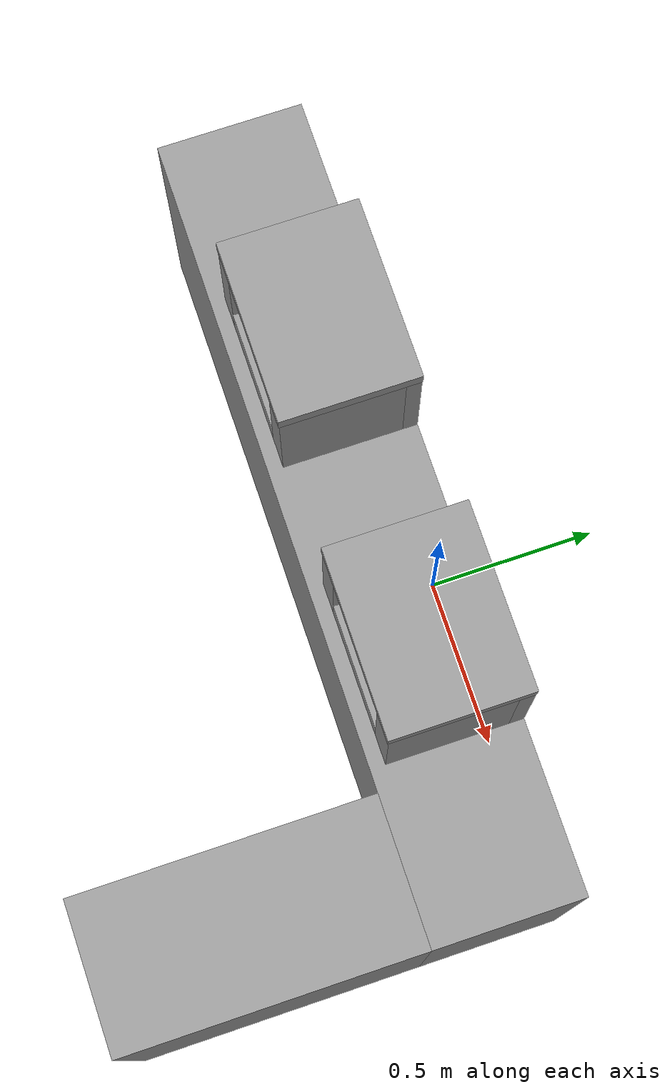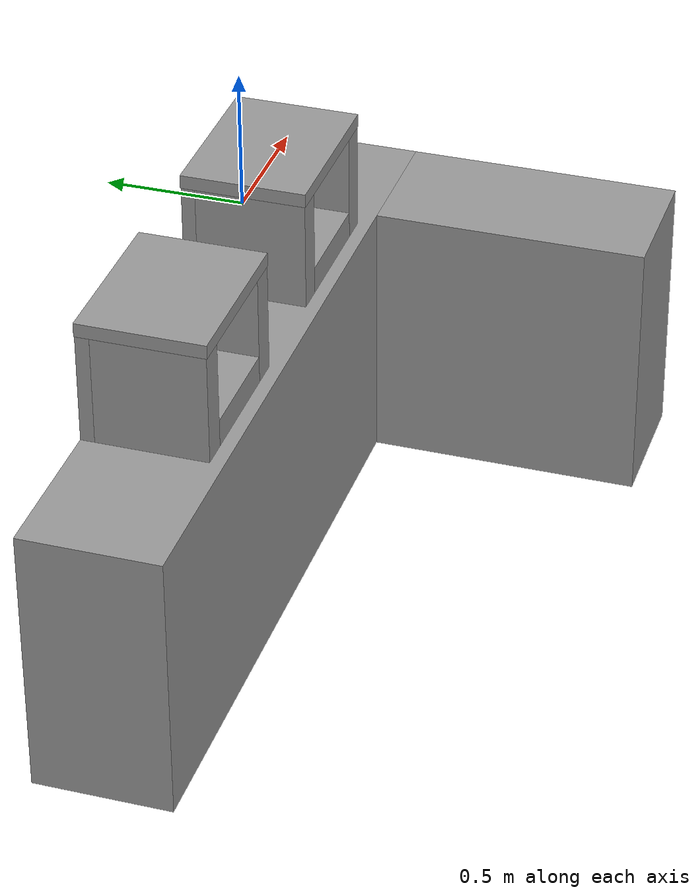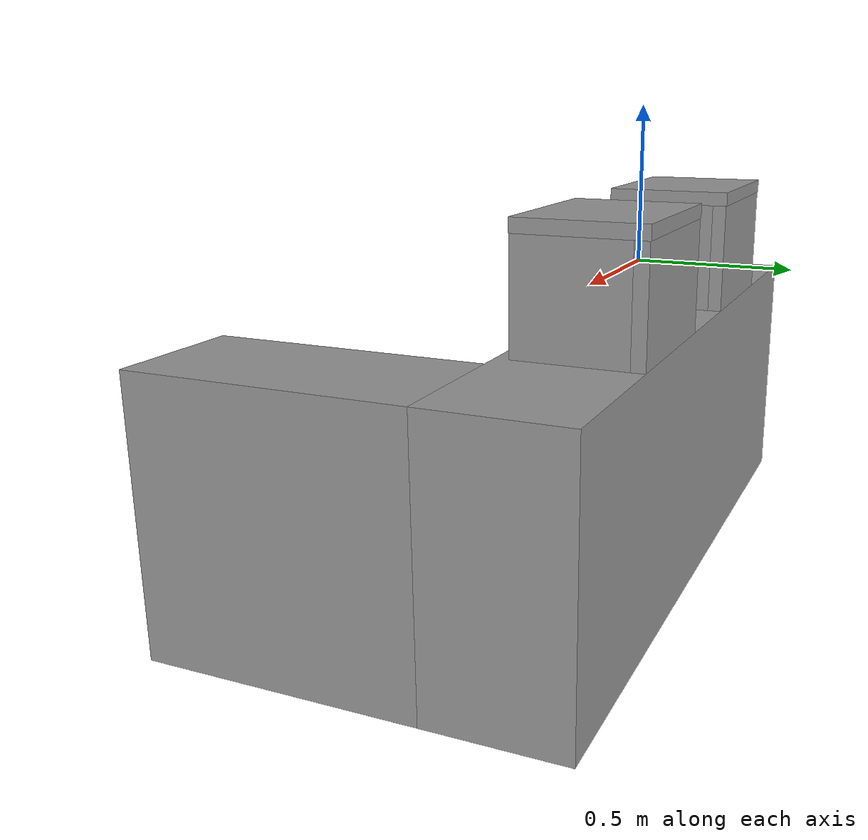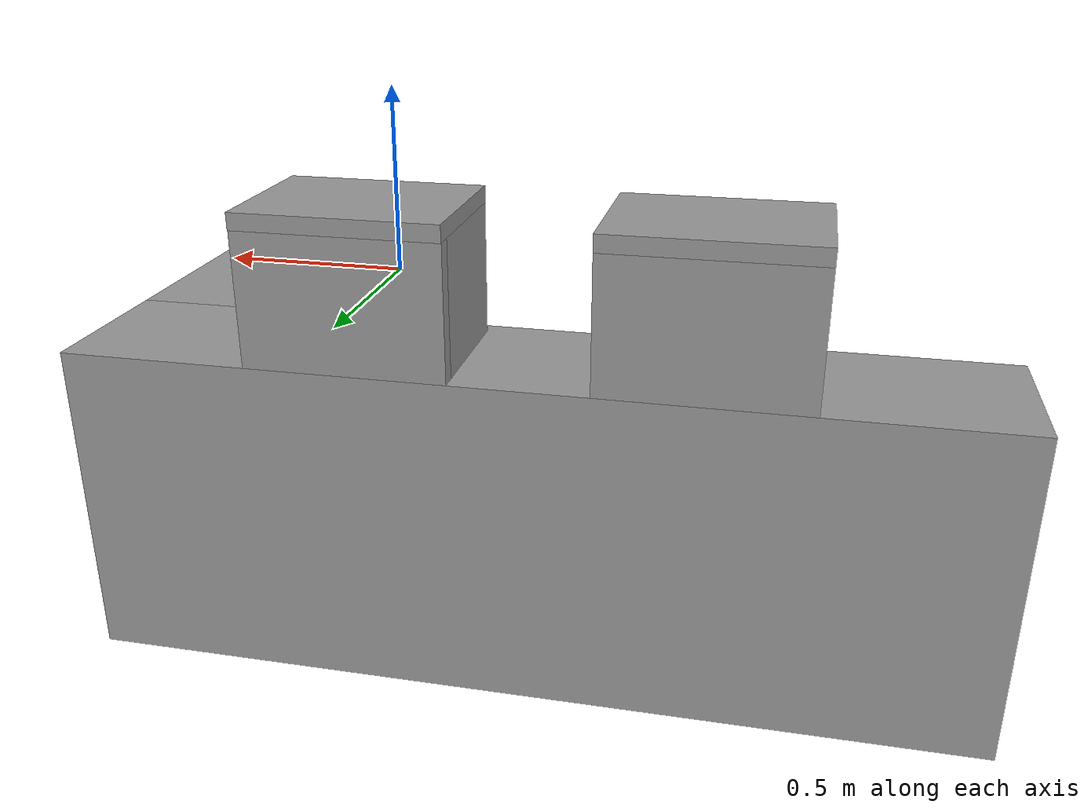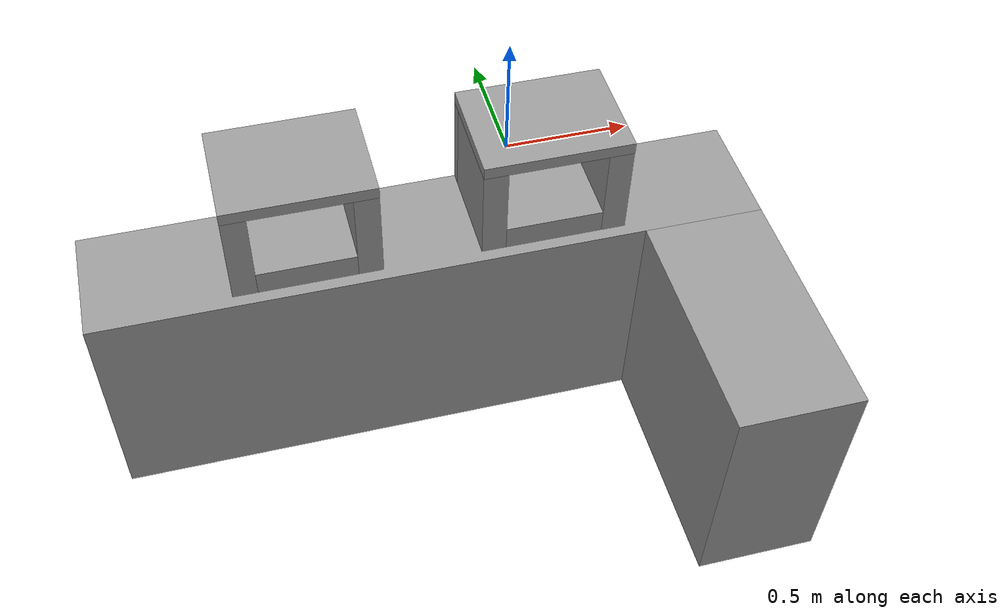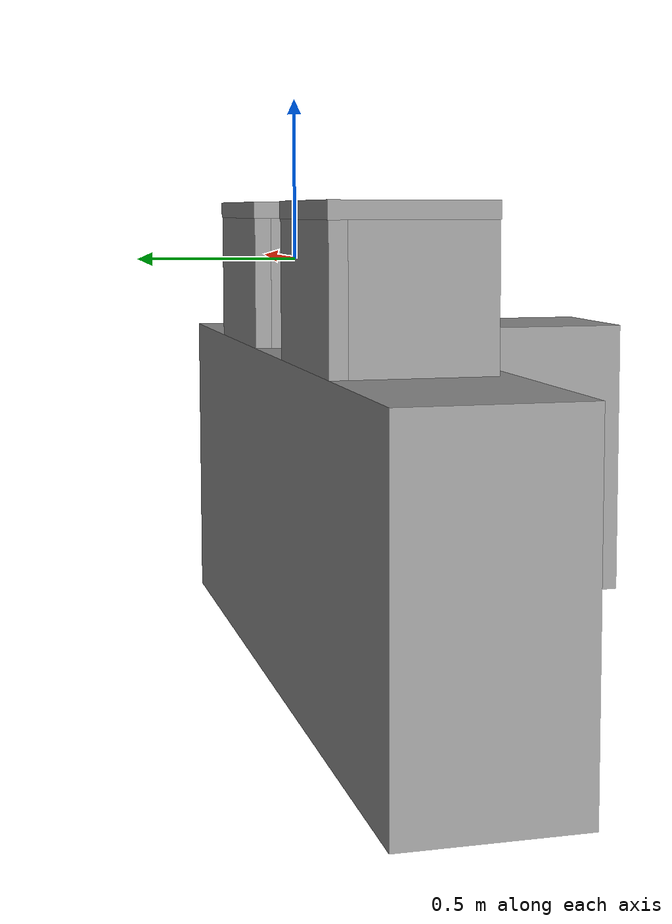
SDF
<?xml version='1.0'?>
<sdf version='1.7'>
  <model name='station'>
    <link name='link_0'>
      <inertial>
        <mass>1</mass>
        <inertia>
          <ixx>0.166667</ixx>
          <ixy>0</ixy>
          <ixz>0</ixz>
          <iyy>0.166667</iyy>
          <iyz>0</iyz>
          <izz>0.166667</izz>
        </inertia>
        <pose>0 0 0 0 -0 0</pose>
      </inertial>
      <pose>-0.371179 -0.089149 -0.771793 0 -0 0</pose>
      <gravity>1</gravity>
      <self_collide>0</self_collide>
      <kinematic>0</kinematic>
      <enable_wind>0</enable_wind>
      <visual name='visual'>
        <pose>0 0 0 0 -0 0</pose>
        <geometry>
          <box>
            <size>2.75 0.5 1</size>
          </box>
        </geometry>
        <material>
          <lighting>1</lighting>
          <script>
            <uri>file://media/materials/scripts/gazebo.material</uri>
            <name>Gazebo/Grey</name>
          </script>
          <shader type='pixel'>
            <normal_map>__default__</normal_map>
          </shader>
          <ambient>1 1 1 1</ambient>
          <diffuse>1 1 1 1</diffuse>
          <specular>0 0 0 0</specular>
          <emissive>0 0 0 1</emissive>
        </material>
        <transparency>0</transparency>
        <cast_shadows>1</cast_shadows>
      </visual>
      <collision name='collision_2'>
        <laser_retro>0</laser_retro>
        <max_contacts>10</max_contacts>
        <pose>0 0 0 0 -0 0</pose>
        <geometry>
          <box>
            <size>2.75 0.5 1</size>
          </box>
        </geometry>
        <surface>
          <friction>
            <ode>
              <mu>1</mu>
              <mu2>1</mu2>
              <fdir1>0 0 0</fdir1>
              <slip1>0</slip1>
              <slip2>0</slip2>
            </ode>
            <torsional>
              <coefficient>1</coefficient>
              <patch_radius>0</patch_radius>
              <surface_radius>0</surface_radius>
              <use_patch_radius>1</use_patch_radius>
              <ode>
                <slip>0</slip>
              </ode>
            </torsional>
          </friction>
          <bounce>
            <restitution_coefficient>0</restitution_coefficient>
            <threshold>1e+06</threshold>
          </bounce>
          <contact>
            <collide_without_contact>0</collide_without_contact>
            <collide_without_contact_bitmask>1</collide_without_contact_bitmask>
            <collide_bitmask>1</collide_bitmask>
            <ode>
              <soft_cfm>0</soft_cfm>
              <soft_erp>0.2</soft_erp>
              <kp>1e+13</kp>
              <kd>1</kd>
              <max_vel>0.01</max_vel>
              <min_depth>0</min_depth>
            </ode>
            <bullet>
              <split_impulse>1</split_impulse>
              <split_impulse_penetration_threshold>-0.01</split_impulse_penetration_threshold>
              <soft_cfm>0</soft_cfm>
              <soft_erp>0.2</soft_erp>
              <kp>1e+13</kp>
              <kd>1</kd>
            </bullet>
          </contact>
        </surface>
      </collision>
    </link>
    <link name='link_1'>
      <inertial>
        <mass>1</mass>
        <inertia>
          <ixx>0.166667</ixx>
          <ixy>0</ixy>
          <ixz>0</ixz>
          <iyy>0.166667</iyy>
          <iyz>0</iyz>
          <izz>0.166667</izz>
        </inertia>
        <pose>0 0 0 0 -0 0</pose>
      </inertial>
      <pose>0.753821 -0.839149 -0.771793 0 -0 0</pose>
      <gravity>1</gravity>
      <self_collide>0</self_collide>
      <kinematic>0</kinematic>
      <enable_wind>0</enable_wind>
      <visual name='visual'>
        <pose>0 0 0 0 -0 0</pose>
        <geometry>
          <box>
            <size>0.5 1 1</size>
          </box>
        </geometry>
        <material>
          <lighting>1</lighting>
          <script>
            <uri>file://media/materials/scripts/gazebo.material</uri>
            <name>Gazebo/Grey</name>
          </script>
          <shader type='pixel'>
            <normal_map>__default__</normal_map>
          </shader>
          <ambient>1 1 1 1</ambient>
          <diffuse>1 1 1 1</diffuse>
          <specular>0 0 0 0</specular>
          <emissive>0 0 0 1</emissive>
        </material>
        <transparency>0</transparency>
        <cast_shadows>1</cast_shadows>
      </visual>
      <collision name='collision_1'>
        <laser_retro>0</laser_retro>
        <max_contacts>10</max_contacts>
        <pose>0 0 0 0 -0 0</pose>
        <geometry>
          <box>
            <size>0.5 1 1</size>
          </box>
        </geometry>
        <surface>
          <friction>
            <ode>
              <mu>1</mu>
              <mu2>1</mu2>
              <fdir1>0 0 0</fdir1>
              <slip1>0</slip1>
              <slip2>0</slip2>
            </ode>
            <torsional>
              <coefficient>1</coefficient>
              <patch_radius>0</patch_radius>
              <surface_radius>0</surface_radius>
              <use_patch_radius>1</use_patch_radius>
              <ode>
                <slip>0</slip>
              </ode>
            </torsional>
          </friction>
          <bounce>
            <restitution_coefficient>0</restitution_coefficient>
            <threshold>1e+06</threshold>
          </bounce>
          <contact>
            <collide_without_contact>0</collide_without_contact>
            <collide_without_contact_bitmask>1</collide_without_contact_bitmask>
            <collide_bitmask>1</collide_bitmask>
            <ode>
              <soft_cfm>0</soft_cfm>
              <soft_erp>0.2</soft_erp>
              <kp>1e+13</kp>
              <kd>1</kd>
              <max_vel>0.01</max_vel>
              <min_depth>0</min_depth>
            </ode>
            <bullet>
              <split_impulse>1</split_impulse>
              <split_impulse_penetration_threshold>-0.01</split_impulse_penetration_threshold>
              <soft_cfm>0</soft_cfm>
              <soft_erp>0.2</soft_erp>
              <kp>1e+13</kp>
              <kd>1</kd>
            </bullet>
          </contact>
        </surface>
      </collision>
    </link>
    <link name='link_2'>
      <inertial>
        <mass>1</mass>
        <inertia>
          <ixx>0.166667</ixx>
          <ixy>0</ixy>
          <ixz>0</ixz>
          <iyy>0.166667</iyy>
          <iyz>0</iyz>
          <izz>0.166667</izz>
        </inertia>
        <pose>0 0 0 0 -0 0</pose>
      </inertial>
      <pose>-1.12118 -0.089149 -0.071793 0 -0 0</pose>
      <gravity>1</gravity>
      <self_collide>0</self_collide>
      <kinematic>0</kinematic>
      <enable_wind>0</enable_wind>
      <visual name='visual'>
        <pose>0 0 0 0 -0 0</pose>
        <geometry>
          <box>
            <size>0.1 0.4 0.4</size>
          </box>
        </geometry>
        <material>
          <lighting>1</lighting>
          <script>
            <uri>file://media/materials/scripts/gazebo.material</uri>
            <name>Gazebo/Grey</name>
          </script>
          <shader type='pixel'>
            <normal_map>__default__</normal_map>
          </shader>
          <ambient>0.3 0.3 0.3 1</ambient>
          <diffuse>0.7 0.7 0.7 1</diffuse>
          <specular>0.01 0.01 0.01 1</specular>
          <emissive>0 0 0 1</emissive>
        </material>
        <transparency>0</transparency>
        <cast_shadows>1</cast_shadows>
      </visual>
      <collision name='collision_1'>
        <laser_retro>0</laser_retro>
        <max_contacts>10</max_contacts>
        <pose>0 0 0 0 -0 0</pose>
        <geometry>
          <box>
            <size>0.1 0.4 0.4</size>
          </box>
        </geometry>
        <surface>
          <friction>
            <ode>
              <mu>1</mu>
              <mu2>1</mu2>
              <fdir1>0 0 0</fdir1>
              <slip1>0</slip1>
              <slip2>0</slip2>
            </ode>
            <torsional>
              <coefficient>1</coefficient>
              <patch_radius>0</patch_radius>
              <surface_radius>0</surface_radius>
              <use_patch_radius>1</use_patch_radius>
              <ode>
                <slip>0</slip>
              </ode>
            </torsional>
          </friction>
          <bounce>
            <restitution_coefficient>0</restitution_coefficient>
            <threshold>1e+06</threshold>
          </bounce>
          <contact>
            <collide_without_contact>0</collide_without_contact>
            <collide_without_contact_bitmask>1</collide_without_contact_bitmask>
            <collide_bitmask>1</collide_bitmask>
            <ode>
              <soft_cfm>0</soft_cfm>
              <soft_erp>0.2</soft_erp>
              <kp>1e+13</kp>
              <kd>1</kd>
              <max_vel>0.01</max_vel>
              <min_depth>0</min_depth>
            </ode>
            <bullet>
              <split_impulse>1</split_impulse>
              <split_impulse_penetration_threshold>-0.01</split_impulse_penetration_threshold>
              <soft_cfm>0</soft_cfm>
              <soft_erp>0.2</soft_erp>
              <kp>1e+13</kp>
              <kd>1</kd>
            </bullet>
          </contact>
        </surface>
      </collision>
    </link>
    <link name='link_2_clone'>
      <inertial>
        <mass>1</mass>
        <inertia>
          <ixx>0.166667</ixx>
          <ixy>0</ixy>
          <ixz>0</ixz>
          <iyy>0.166667</iyy>
          <iyz>0</iyz>
          <izz>0.166667</izz>
        </inertia>
        <pose>0 0 0 0 -0 0</pose>
      </inertial>
      <pose>-0.621179 -0.089149 -0.071793 0 -0 0</pose>
      <gravity>1</gravity>
      <self_collide>0</self_collide>
      <kinematic>0</kinematic>
      <enable_wind>0</enable_wind>
      <visual name='visual'>
        <pose>0 0 0 0 -0 0</pose>
        <geometry>
          <box>
            <size>0.1 0.4 0.4</size>
          </box>
        </geometry>
        <material>
          <lighting>1</lighting>
          <script>
            <uri>file://media/materials/scripts/gazebo.material</uri>
            <name>Gazebo/Grey</name>
          </script>
          <shader type='pixel'>
            <normal_map>__default__</normal_map>
          </shader>
          <ambient>0.3 0.3 0.3 1</ambient>
          <diffuse>0.7 0.7 0.7 1</diffuse>
          <specular>0.01 0.01 0.01 1</specular>
          <emissive>0 0 0 1</emissive>
        </material>
        <transparency>0</transparency>
        <cast_shadows>1</cast_shadows>
      </visual>
      <collision name='collision_1'>
        <laser_retro>0</laser_retro>
        <max_contacts>10</max_contacts>
        <pose>0 0 0 0 -0 0</pose>
        <geometry>
          <box>
            <size>0.1 0.4 0.4</size>
          </box>
        </geometry>
        <surface>
          <friction>
            <ode>
              <mu>1</mu>
              <mu2>1</mu2>
              <fdir1>0 0 0</fdir1>
              <slip1>0</slip1>
              <slip2>0</slip2>
            </ode>
            <torsional>
              <coefficient>1</coefficient>
              <patch_radius>0</patch_radius>
              <surface_radius>0</surface_radius>
              <use_patch_radius>1</use_patch_radius>
              <ode>
                <slip>0</slip>
              </ode>
            </torsional>
          </friction>
          <bounce>
            <restitution_coefficient>0</restitution_coefficient>
            <threshold>1e+06</threshold>
          </bounce>
          <contact>
            <collide_without_contact>0</collide_without_contact>
            <collide_without_contact_bitmask>1</collide_without_contact_bitmask>
            <collide_bitmask>1</collide_bitmask>
            <ode>
              <soft_cfm>0</soft_cfm>
              <soft_erp>0.2</soft_erp>
              <kp>1e+13</kp>
              <kd>1</kd>
              <max_vel>0.01</max_vel>
              <min_depth>0</min_depth>
            </ode>
            <bullet>
              <split_impulse>1</split_impulse>
              <split_impulse_penetration_threshold>-0.01</split_impulse_penetration_threshold>
              <soft_cfm>0</soft_cfm>
              <soft_erp>0.2</soft_erp>
              <kp>1e+13</kp>
              <kd>1</kd>
            </bullet>
          </contact>
        </surface>
      </collision>
    </link>
    <link name='link_2_clone_0'>
      <inertial>
        <mass>1</mass>
        <inertia>
          <ixx>0.166667</ixx>
          <ixy>0</ixy>
          <ixz>0</ixz>
          <iyy>0.166667</iyy>
          <iyz>0</iyz>
          <izz>0.166667</izz>
        </inertia>
        <pose>0 0 0 0 -0 0</pose>
      </inertial>
      <pose>-0.871179 0.135851 -0.071793 0 0 -1.5708</pose>
      <gravity>1</gravity>
      <self_collide>0</self_collide>
      <kinematic>0</kinematic>
      <enable_wind>0</enable_wind>
      <visual name='visual'>
        <pose>0 0 0 0 -0 0</pose>
        <geometry>
          <box>
            <size>0.05 0.6 0.4</size>
          </box>
        </geometry>
        <material>
          <lighting>1</lighting>
          <script>
            <uri>file://media/materials/scripts/gazebo.material</uri>
            <name>Gazebo/Grey</name>
          </script>
          <shader type='pixel'>
            <normal_map>__default__</normal_map>
          </shader>
          <ambient>0.3 0.3 0.3 1</ambient>
          <diffuse>0.7 0.7 0.7 1</diffuse>
          <specular>0.01 0.01 0.01 1</specular>
          <emissive>0 0 0 1</emissive>
        </material>
        <transparency>0</transparency>
        <cast_shadows>1</cast_shadows>
      </visual>
      <collision name='collision_1'>
        <laser_retro>0</laser_retro>
        <max_contacts>10</max_contacts>
        <pose>0 0 0 0 -0 0</pose>
        <geometry>
          <box>
            <size>0.05 0.6 0.4</size>
          </box>
        </geometry>
        <surface>
          <friction>
            <ode>
              <mu>1</mu>
              <mu2>1</mu2>
              <fdir1>0 0 0</fdir1>
              <slip1>0</slip1>
              <slip2>0</slip2>
            </ode>
            <torsional>
              <coefficient>1</coefficient>
              <patch_radius>0</patch_radius>
              <surface_radius>0</surface_radius>
              <use_patch_radius>1</use_patch_radius>
              <ode>
                <slip>0</slip>
              </ode>
            </torsional>
          </friction>
          <bounce>
            <restitution_coefficient>0</restitution_coefficient>
            <threshold>1e+06</threshold>
          </bounce>
          <contact>
            <collide_without_contact>0</collide_without_contact>
            <collide_without_contact_bitmask>1</collide_without_contact_bitmask>
            <collide_bitmask>1</collide_bitmask>
            <ode>
              <soft_cfm>0</soft_cfm>
              <soft_erp>0.2</soft_erp>
              <kp>1e+13</kp>
              <kd>1</kd>
              <max_vel>0.01</max_vel>
              <min_depth>0</min_depth>
            </ode>
            <bullet>
              <split_impulse>1</split_impulse>
              <split_impulse_penetration_threshold>-0.01</split_impulse_penetration_threshold>
              <soft_cfm>0</soft_cfm>
              <soft_erp>0.2</soft_erp>
              <kp>1e+13</kp>
              <kd>1</kd>
            </bullet>
          </contact>
        </surface>
      </collision>
    </link>
    <link name='link_2_clone_0_clone'>
      <inertial>
        <mass>1</mass>
        <inertia>
          <ixx>0.166667</ixx>
          <ixy>0</ixy>
          <ixz>0</ixz>
          <iyy>0.166667</iyy>
          <iyz>0</iyz>
          <izz>0.166667</izz>
        </inertia>
        <pose>0 0 0 0 -0 0</pose>
      </inertial>
      <pose>0.128821 0.135851 -0.071793 0 0 -1.5708</pose>
      <gravity>1</gravity>
      <self_collide>0</self_collide>
      <kinematic>0</kinematic>
      <enable_wind>0</enable_wind>
      <visual name='visual'>
        <pose>0 0 0 0 -0 0</pose>
        <geometry>
          <box>
            <size>0.05 0.6 0.4</size>
          </box>
        </geometry>
        <material>
          <lighting>1</lighting>
          <script>
            <uri>file://media/materials/scripts/gazebo.material</uri>
            <name>Gazebo/Grey</name>
          </script>
          <shader type='pixel'>
            <normal_map>__default__</normal_map>
          </shader>
          <ambient>0.3 0.3 0.3 1</ambient>
          <diffuse>0.7 0.7 0.7 1</diffuse>
          <specular>0.01 0.01 0.01 1</specular>
          <emissive>0 0 0 1</emissive>
        </material>
        <transparency>0</transparency>
        <cast_shadows>1</cast_shadows>
      </visual>
      <collision name='collision_1'>
        <laser_retro>0</laser_retro>
        <max_contacts>10</max_contacts>
        <pose>0 0 0 0 -0 0</pose>
        <geometry>
          <box>
            <size>0.05 0.6 0.4</size>
          </box>
        </geometry>
        <surface>
          <friction>
            <ode>
              <mu>1</mu>
              <mu2>1</mu2>
              <fdir1>0 0 0</fdir1>
              <slip1>0</slip1>
              <slip2>0</slip2>
            </ode>
            <torsional>
              <coefficient>1</coefficient>
              <patch_radius>0</patch_radius>
              <surface_radius>0</surface_radius>
              <use_patch_radius>1</use_patch_radius>
              <ode>
                <slip>0</slip>
              </ode>
            </torsional>
          </friction>
          <bounce>
            <restitution_coefficient>0</restitution_coefficient>
            <threshold>1e+06</threshold>
          </bounce>
          <contact>
            <collide_without_contact>0</collide_without_contact>
            <collide_without_contact_bitmask>1</collide_without_contact_bitmask>
            <collide_bitmask>1</collide_bitmask>
            <ode>
              <soft_cfm>0</soft_cfm>
              <soft_erp>0.2</soft_erp>
              <kp>1e+13</kp>
              <kd>1</kd>
              <max_vel>0.01</max_vel>
              <min_depth>0</min_depth>
            </ode>
            <bullet>
              <split_impulse>1</split_impulse>
              <split_impulse_penetration_threshold>-0.01</split_impulse_penetration_threshold>
              <soft_cfm>0</soft_cfm>
              <soft_erp>0.2</soft_erp>
              <kp>1e+13</kp>
              <kd>1</kd>
            </bullet>
          </contact>
        </surface>
      </collision>
    </link>
    <link name='link_2_clone_0_clone_0'>
      <inertial>
        <mass>1</mass>
        <inertia>
          <ixx>0.166667</ixx>
          <ixy>0</ixy>
          <ixz>0</ixz>
          <iyy>0.166667</iyy>
          <iyz>0</iyz>
          <izz>0.166667</izz>
        </inertia>
        <pose>0 0 0 0 -0 0</pose>
      </inertial>
      <pose>-0.871179 -0.064149 0.153207 1.5708 1.57079 -4e-06</pose>
      <gravity>1</gravity>
      <self_collide>0</self_collide>
      <kinematic>0</kinematic>
      <enable_wind>0</enable_wind>
      <visual name='visual'>
        <pose>0 0 0 0 -0 0</pose>
        <geometry>
          <box>
            <size>0.05 0.6 0.455</size>
          </box>
        </geometry>
        <material>
          <lighting>1</lighting>
          <script>
            <uri>file://media/materials/scripts/gazebo.material</uri>
            <name>Gazebo/Grey</name>
          </script>
          <shader type='pixel'>
            <normal_map>__default__</normal_map>
          </shader>
          <ambient>0.3 0.3 0.3 1</ambient>
          <diffuse>0.7 0.7 0.7 1</diffuse>
          <specular>0.01 0.01 0.01 1</specular>
          <emissive>0 0 0 1</emissive>
        </material>
        <transparency>0</transparency>
        <cast_shadows>1</cast_shadows>
      </visual>
    </link>
    <link name='link_2_clone_0_clone_0_clone'>
      <inertial>
        <mass>1</mass>
        <inertia>
          <ixx>0.166667</ixx>
          <ixy>0</ixy>
          <ixz>0</ixz>
          <iyy>0.166667</iyy>
          <iyz>0</iyz>
          <izz>0.166667</izz>
        </inertia>
        <pose>0 0 0 0 -0 0</pose>
      </inertial>
      <pose>0.128821 -0.064149 0.153207 1.5708 1.57079 -4e-06</pose>
      <gravity>1</gravity>
      <self_collide>0</self_collide>
      <kinematic>0</kinematic>
      <enable_wind>0</enable_wind>
      <visual name='visual'>
        <pose>0 0 0 0 -0 0</pose>
        <geometry>
          <box>
            <size>0.05 0.6 0.455</size>
          </box>
        </geometry>
        <material>
          <lighting>1</lighting>
          <script>
            <uri>file://media/materials/scripts/gazebo.material</uri>
            <name>Gazebo/Grey</name>
          </script>
          <shader type='pixel'>
            <normal_map>__default__</normal_map>
          </shader>
          <ambient>0.3 0.3 0.3 1</ambient>
          <diffuse>0.7 0.7 0.7 1</diffuse>
          <specular>0.01 0.01 0.01 1</specular>
          <emissive>0 0 0 1</emissive>
        </material>
        <transparency>0</transparency>
        <cast_shadows>1</cast_shadows>
      </visual>
    </link>
    <link name='link_2_clone_clone'>
      <inertial>
        <mass>1</mass>
        <inertia>
          <ixx>0.166667</ixx>
          <ixy>0</ixy>
          <ixz>0</ixz>
          <iyy>0.166667</iyy>
          <iyz>0</iyz>
          <izz>0.166667</izz>
        </inertia>
        <pose>0 0 0 0 -0 0</pose>
      </inertial>
      <pose>-0.121179 -0.089149 -0.071793 0 6e-06 0</pose>
      <gravity>1</gravity>
      <self_collide>0</self_collide>
      <kinematic>0</kinematic>
      <enable_wind>0</enable_wind>
      <visual name='visual'>
        <pose>0 0 0 0 -0 0</pose>
        <geometry>
          <box>
            <size>0.1 0.4 0.4</size>
          </box>
        </geometry>
        <material>
          <lighting>1</lighting>
          <script>
            <uri>file://media/materials/scripts/gazebo.material</uri>
            <name>Gazebo/Grey</name>
          </script>
          <shader type='pixel'>
            <normal_map>__default__</normal_map>
          </shader>
          <ambient>0.3 0.3 0.3 1</ambient>
          <diffuse>0.7 0.7 0.7 1</diffuse>
          <specular>0.01 0.01 0.01 1</specular>
          <emissive>0 0 0 1</emissive>
        </material>
        <transparency>0</transparency>
        <cast_shadows>1</cast_shadows>
      </visual>
      <collision name='collision_1'>
        <laser_retro>0</laser_retro>
        <max_contacts>10</max_contacts>
        <pose>0 0 0 0 -0 0</pose>
        <geometry>
          <box>
            <size>0.1 0.4 0.4</size>
          </box>
        </geometry>
        <surface>
          <friction>
            <ode>
              <mu>1</mu>
              <mu2>1</mu2>
              <fdir1>0 0 0</fdir1>
              <slip1>0</slip1>
              <slip2>0</slip2>
            </ode>
            <torsional>
              <coefficient>1</coefficient>
              <patch_radius>0</patch_radius>
              <surface_radius>0</surface_radius>
              <use_patch_radius>1</use_patch_radius>
              <ode>
                <slip>0</slip>
              </ode>
            </torsional>
          </friction>
          <bounce>
            <restitution_coefficient>0</restitution_coefficient>
            <threshold>1e+06</threshold>
          </bounce>
          <contact>
            <collide_without_contact>0</collide_without_contact>
            <collide_without_contact_bitmask>1</collide_without_contact_bitmask>
            <collide_bitmask>1</collide_bitmask>
            <ode>
              <soft_cfm>0</soft_cfm>
              <soft_erp>0.2</soft_erp>
              <kp>1e+13</kp>
              <kd>1</kd>
              <max_vel>0.01</max_vel>
              <min_depth>0</min_depth>
            </ode>
            <bullet>
              <split_impulse>1</split_impulse>
              <split_impulse_penetration_threshold>-0.01</split_impulse_penetration_threshold>
              <soft_cfm>0</soft_cfm>
              <soft_erp>0.2</soft_erp>
              <kp>1e+13</kp>
              <kd>1</kd>
            </bullet>
          </contact>
        </surface>
      </collision>
    </link>
    <link name='link_2_clone_clone_0'>
      <inertial>
        <mass>1</mass>
        <inertia>
          <ixx>0.166667</ixx>
          <ixy>0</ixy>
          <ixz>0</ixz>
          <iyy>0.166667</iyy>
          <iyz>0</iyz>
          <izz>0.166667</izz>
        </inertia>
        <pose>0 0 0 0 -0 0</pose>
      </inertial>
      <pose>0.378821 -0.089149 -0.071793 0 6e-06 0</pose>
      <gravity>1</gravity>
      <self_collide>0</self_collide>
      <kinematic>0</kinematic>
      <enable_wind>0</enable_wind>
      <visual name='visual'>
        <pose>0 0 0 0 -0 0</pose>
        <geometry>
          <box>
            <size>0.1 0.4 0.4</size>
          </box>
        </geometry>
        <material>
          <lighting>1</lighting>
          <script>
            <uri>file://media/materials/scripts/gazebo.material</uri>
            <name>Gazebo/Grey</name>
          </script>
          <shader type='pixel'>
            <normal_map>__default__</normal_map>
          </shader>
          <ambient>0.3 0.3 0.3 1</ambient>
          <diffuse>0.7 0.7 0.7 1</diffuse>
          <specular>0.01 0.01 0.01 1</specular>
          <emissive>0 0 0 1</emissive>
        </material>
        <transparency>0</transparency>
        <cast_shadows>1</cast_shadows>
      </visual>
      <collision name='collision_1'>
        <laser_retro>0</laser_retro>
        <max_contacts>10</max_contacts>
        <pose>0 0 0 0 -0 0</pose>
        <geometry>
          <box>
            <size>0.1 0.4 0.4</size>
          </box>
        </geometry>
        <surface>
          <friction>
            <ode>
              <mu>1</mu>
              <mu2>1</mu2>
              <fdir1>0 0 0</fdir1>
              <slip1>0</slip1>
              <slip2>0</slip2>
            </ode>
            <torsional>
              <coefficient>1</coefficient>
              <patch_radius>0</patch_radius>
              <surface_radius>0</surface_radius>
              <use_patch_radius>1</use_patch_radius>
              <ode>
                <slip>0</slip>
              </ode>
            </torsional>
          </friction>
          <bounce>
            <restitution_coefficient>0</restitution_coefficient>
            <threshold>1e+06</threshold>
          </bounce>
          <contact>
            <collide_without_contact>0</collide_without_contact>
            <collide_without_contact_bitmask>1</collide_without_contact_bitmask>
            <collide_bitmask>1</collide_bitmask>
            <ode>
              <soft_cfm>0</soft_cfm>
              <soft_erp>0.2</soft_erp>
              <kp>1e+13</kp>
              <kd>1</kd>
              <max_vel>0.01</max_vel>
              <min_depth>0</min_depth>
            </ode>
            <bullet>
              <split_impulse>1</split_impulse>
              <split_impulse_penetration_threshold>-0.01</split_impulse_penetration_threshold>
              <soft_cfm>0</soft_cfm>
              <soft_erp>0.2</soft_erp>
              <kp>1e+13</kp>
              <kd>1</kd>
            </bullet>
          </contact>
        </surface>
      </collision>
    </link>
    <link name='link_2_clone_clone_1'>
      <inertial>
        <mass>1</mass>
        <inertia>
          <ixx>0.166667</ixx>
          <ixy>0</ixy>
          <ixz>0</ixz>
          <iyy>0.166667</iyy>
          <iyz>0</iyz>
          <izz>0.166667</izz>
        </inertia>
        <pose>0 0 0 0 -0 0</pose>
      </inertial>
      <pose>-0.871179 -0.089149 -0.221793 3e-06 1.57079 3e-06</pose>
      <gravity>1</gravity>
      <self_collide>0</self_collide>
      <kinematic>0</kinematic>
      <enable_wind>0</enable_wind>
      <visual name='visual'>
        <pose>0 0 0 0 -0 0</pose>
        <geometry>
          <box>
            <size>0.1 0.4 0.4</size>
          </box>
        </geometry>
        <material>
          <lighting>1</lighting>
          <script>
            <uri>file://media/materials/scripts/gazebo.material</uri>
            <name>Gazebo/Grey</name>
          </script>
          <shader type='pixel'>
            <normal_map>__default__</normal_map>
          </shader>
          <ambient>0.3 0.3 0.3 1</ambient>
          <diffuse>0.7 0.7 0.7 1</diffuse>
          <specular>0.01 0.01 0.01 1</specular>
          <emissive>0 0 0 1</emissive>
        </material>
        <transparency>0</transparency>
        <cast_shadows>1</cast_shadows>
      </visual>
      <collision name='collision_1'>
        <laser_retro>0</laser_retro>
        <max_contacts>10</max_contacts>
        <pose>0 0 0 0 -0 0</pose>
        <geometry>
          <box>
            <size>0.1 0.4 0.4</size>
          </box>
        </geometry>
        <surface>
          <friction>
            <ode>
              <mu>1</mu>
              <mu2>1</mu2>
              <fdir1>0 0 0</fdir1>
              <slip1>0</slip1>
              <slip2>0</slip2>
            </ode>
            <torsional>
              <coefficient>1</coefficient>
              <patch_radius>0</patch_radius>
              <surface_radius>0</surface_radius>
              <use_patch_radius>1</use_patch_radius>
              <ode>
                <slip>0</slip>
              </ode>
            </torsional>
          </friction>
          <bounce>
            <restitution_coefficient>0</restitution_coefficient>
            <threshold>1e+06</threshold>
          </bounce>
          <contact>
            <collide_without_contact>0</collide_without_contact>
            <collide_without_contact_bitmask>1</collide_without_contact_bitmask>
            <collide_bitmask>1</collide_bitmask>
            <ode>
              <soft_cfm>0</soft_cfm>
              <soft_erp>0.2</soft_erp>
              <kp>1e+13</kp>
              <kd>1</kd>
              <max_vel>0.01</max_vel>
              <min_depth>0</min_depth>
            </ode>
            <bullet>
              <split_impulse>1</split_impulse>
              <split_impulse_penetration_threshold>-0.01</split_impulse_penetration_threshold>
              <soft_cfm>0</soft_cfm>
              <soft_erp>0.2</soft_erp>
              <kp>1e+13</kp>
              <kd>1</kd>
            </bullet>
          </contact>
        </surface>
      </collision>
    </link>

    <link name='link_2_clone_clone_1_clone_0'>
      <inertial>
        <mass>1</mass>
        <inertia>
          <ixx>0.166667</ixx>
          <ixy>0</ixy>
          <ixz>0</ixz>
          <iyy>0.166667</iyy>
          <iyz>0</iyz>
          <izz>0.166667</izz>
        </inertia>
        <pose>0 0 0 0 -0 0</pose>
      </inertial>
      <pose>0.128821 -0.089149 -0.221793 -3e-06 1.57079 -3e-06</pose>
      <gravity>1</gravity>
      <self_collide>0</self_collide>
      <kinematic>0</kinematic>
      <enable_wind>0</enable_wind>
      <visual name='visual'>
        <pose>0 0 0 0 -0 0</pose>
        <geometry>
          <box>
            <size>0.1 0.4 0.4</size>
          </box>
        </geometry>
        <material>
          <lighting>1</lighting>
          <script>
            <uri>file://media/materials/scripts/gazebo.material</uri>
            <name>Gazebo/Grey</name>
          </script>
          <shader type='pixel'>
            <normal_map>__default__</normal_map>
          </shader>
          <ambient>0.3 0.3 0.3 1</ambient>
          <diffuse>0.7 0.7 0.7 1</diffuse>
          <specular>0.01 0.01 0.01 1</specular>
          <emissive>0 0 0 1</emissive>
        </material>
        <transparency>0</transparency>
        <cast_shadows>1</cast_shadows>
      </visual>
      <collision name='collision_1'>
        <laser_retro>0</laser_retro>
        <max_contacts>10</max_contacts>
        <pose>0 0 0 0 -0 0</pose>
        <geometry>
          <box>
            <size>0.1 0.4 0.4</size>
          </box>
        </geometry>
        <surface>
          <friction>
            <ode>
              <mu>1</mu>
              <mu2>1</mu2>
              <fdir1>0 0 0</fdir1>
              <slip1>0</slip1>
              <slip2>0</slip2>
            </ode>
            <torsional>
              <coefficient>1</coefficient>
              <patch_radius>0</patch_radius>
              <surface_radius>0</surface_radius>
              <use_patch_radius>1</use_patch_radius>
              <ode>
                <slip>0</slip>
              </ode>
            </torsional>
          </friction>
          <bounce>
            <restitution_coefficient>0</restitution_coefficient>
            <threshold>1e+06</threshold>
          </bounce>
          <contact>
            <collide_without_contact>0</collide_without_contact>
            <collide_without_contact_bitmask>1</collide_without_contact_bitmask>
            <collide_bitmask>1</collide_bitmask>
            <ode>
              <soft_cfm>0</soft_cfm>
              <soft_erp>0.2</soft_erp>
              <kp>1e+13</kp>
              <kd>1</kd>
              <max_vel>0.01</max_vel>
              <min_depth>0</min_depth>
            </ode>
            <bullet>
              <split_impulse>1</split_impulse>
              <split_impulse_penetration_threshold>-0.01</split_impulse_penetration_threshold>
              <soft_cfm>0</soft_cfm>
              <soft_erp>0.2</soft_erp>
              <kp>1e+13</kp>
              <kd>1</kd>
            </bullet>
          </contact>
        </surface>
      </collision>
    </link>
    <joint name='link_0_JOINT_10' type='fixed'>
      <parent>link_0</parent>
      <child>link_2_clone_0_clone</child>
      <pose>0 0 0 0 -0 0</pose>
      <axis>
        <xyz>1 0 0</xyz>
        <limit>
          <lower>-1.79769e+308</lower>
          <upper>1.79769e+308</upper>
          <effort>-1</effort>
          <velocity>-1</velocity>
        </limit>
        <dynamics>
          <spring_reference>0</spring_reference>
          <spring_stiffness>0</spring_stiffness>
          <damping>0</damping>
        </dynamics>
      </axis>
      <physics>
        <ode>
          <limit>
            <cfm>0</cfm>
            <erp>0.2</erp>
          </limit>
          <suspension>
            <cfm>0</cfm>
            <erp>0.2</erp>
          </suspension>
        </ode>
      </physics>
    </joint>
    <joint name='link_0_JOINT_11' type='fixed'>
      <parent>link_0</parent>
      <child>link_2_clone_0_clone_0</child>
      <pose>0 0 0 0 -0 0</pose>
      <axis>
        <xyz>1 0 0</xyz>
        <limit>
          <lower>-1.79769e+308</lower>
          <upper>1.79769e+308</upper>
          <effort>-1</effort>
          <velocity>-1</velocity>
        </limit>
        <dynamics>
          <spring_reference>0</spring_reference>
          <spring_stiffness>0</spring_stiffness>
          <damping>0</damping>
        </dynamics>
      </axis>
      <physics>
        <ode>
          <limit>
            <cfm>0</cfm>
            <erp>0.2</erp>
          </limit>
          <suspension>
            <cfm>0</cfm>
            <erp>0.2</erp>
          </suspension>
        </ode>
      </physics>
    </joint>
    <joint name='link_0_JOINT_12' type='fixed'>
      <parent>link_0</parent>
      <child>link_2_clone_0_clone_0_clone</child>
      <pose>0 0 0 0 -0 0</pose>
      <axis>
        <xyz>1 0 0</xyz>
        <limit>
          <lower>-1.79769e+308</lower>
          <upper>1.79769e+308</upper>
          <effort>-1</effort>
          <velocity>-1</velocity>
        </limit>
        <dynamics>
          <spring_reference>0</spring_reference>
          <spring_stiffness>0</spring_stiffness>
          <damping>0</damping>
        </dynamics>
      </axis>
      <physics>
        <ode>
          <limit>
            <cfm>0</cfm>
            <erp>0.2</erp>
          </limit>
          <suspension>
            <cfm>0</cfm>
            <erp>0.2</erp>
          </suspension>
        </ode>
      </physics>
    </joint>
    <joint name='link_0_JOINT_1' type='fixed'>
      <parent>link_0</parent>
      <child>link_2_clone</child>
      <pose>0 0 0 0 -0 0</pose>
      <physics>
        <ode>
          <limit>
            <cfm>0</cfm>
            <erp>0.2</erp>
          </limit>
          <suspension>
            <cfm>0</cfm>
            <erp>0.2</erp>
          </suspension>
        </ode>
      </physics>
    </joint>
    <joint name='link_0_JOINT_2' type='fixed'>
      <parent>link_0</parent>
      <child>link_2_clone_clone_1</child>
      <pose>0 0 0 0 -0 0</pose>
      <axis>
        <xyz>1 0 0</xyz>
        <limit>
          <lower>-1.79769e+308</lower>
          <upper>1.79769e+308</upper>
          <effort>-1</effort>
          <velocity>-1</velocity>
        </limit>
        <dynamics>
          <spring_reference>0</spring_reference>
          <spring_stiffness>0</spring_stiffness>
          <damping>0</damping>
        </dynamics>
      </axis>
      <physics>
        <ode>
          <limit>
            <cfm>0</cfm>
            <erp>0.2</erp>
          </limit>
          <suspension>
            <cfm>0</cfm>
            <erp>0.2</erp>
          </suspension>
        </ode>
      </physics>
    </joint>
    <joint name='link_0_JOINT_3' type='fixed'>
      <parent>link_0</parent>
      <child>link_2</child>
      <pose>0 0 0 0 -0 0</pose>
      <axis>
        <xyz>1 0 0</xyz>
        <limit>
          <lower>-1.79769e+308</lower>
          <upper>1.79769e+308</upper>
          <effort>-1</effort>
          <velocity>-1</velocity>
        </limit>
        <dynamics>
          <spring_reference>0</spring_reference>
          <spring_stiffness>0</spring_stiffness>
          <damping>0</damping>
        </dynamics>
      </axis>
      <physics>
        <ode>
          <limit>
            <cfm>0</cfm>
            <erp>0.2</erp>
          </limit>
          <suspension>
            <cfm>0</cfm>
            <erp>0.2</erp>
          </suspension>
        </ode>
      </physics>
    </joint>
    <joint name='link_0_JOINT_4' type='fixed'>
      <parent>link_0</parent>
      <child>link_2_clone_clone</child>
      <pose>0 0 0 0 -0 0</pose>
      <axis>
        <xyz>1 0 0</xyz>
        <limit>
          <lower>-1.79769e+308</lower>
          <upper>1.79769e+308</upper>
          <effort>-1</effort>
          <velocity>-1</velocity>
        </limit>
        <dynamics>
          <spring_reference>0</spring_reference>
          <spring_stiffness>0</spring_stiffness>
          <damping>0</damping>
        </dynamics>
      </axis>
      <physics>
        <ode>
          <limit>
            <cfm>0</cfm>
            <erp>0.2</erp>
          </limit>
          <suspension>
            <cfm>0</cfm>
            <erp>0.2</erp>
          </suspension>
        </ode>
      </physics>
    </joint>
    <joint name='link_0_JOINT_5' type='fixed'>
      <parent>link_0</parent>
      <child>link_2_clone_clone_1_clone_0</child>
      <pose>0 0 0 0 -0 0</pose>
      <axis>
        <xyz>1 0 0</xyz>
        <limit>
          <lower>-1.79769e+308</lower>
          <upper>1.79769e+308</upper>
          <effort>-1</effort>
          <velocity>-1</velocity>
        </limit>
        <dynamics>
          <spring_reference>0</spring_reference>
          <spring_stiffness>0</spring_stiffness>
          <damping>0</damping>
        </dynamics>
      </axis>
      <physics>
        <ode>
          <limit>
            <cfm>0</cfm>
            <erp>0.2</erp>
          </limit>
          <suspension>
            <cfm>0</cfm>
            <erp>0.2</erp>
          </suspension>
        </ode>
      </physics>
    </joint>
    <joint name='link_0_JOINT_6' type='fixed'>
      <parent>link_0</parent>
      <child>link_1</child>
      <pose>0 0 0 0 -0 0</pose>
      <axis>
        <xyz>1 0 0</xyz>
        <limit>
          <lower>-1.79769e+308</lower>
          <upper>1.79769e+308</upper>
          <effort>-1</effort>
          <velocity>-1</velocity>
        </limit>
        <dynamics>
          <spring_reference>0</spring_reference>
          <spring_stiffness>0</spring_stiffness>
          <damping>0</damping>
        </dynamics>
      </axis>
      <physics>
        <ode>
          <limit>
            <cfm>0</cfm>
            <erp>0.2</erp>
          </limit>
          <suspension>
            <cfm>0</cfm>
            <erp>0.2</erp>
          </suspension>
        </ode>
      </physics>
    </joint>
    <joint name='link_0_JOINT_7' type='fixed'>
      <parent>link_0</parent>
      <child>link_2_clone_clone_0</child>
      <pose>0 0 0 0 -0 0</pose>
      <axis>
        <xyz>1 0 0</xyz>
        <limit>
          <lower>-1.79769e+308</lower>
          <upper>1.79769e+308</upper>
          <effort>-1</effort>
          <velocity>-1</velocity>
        </limit>
        <dynamics>
          <spring_reference>0</spring_reference>
          <spring_stiffness>0</spring_stiffness>
          <damping>0</damping>
        </dynamics>
      </axis>
      <physics>
        <ode>
          <limit>
            <cfm>0</cfm>
            <erp>0.2</erp>
          </limit>
          <suspension>
            <cfm>0</cfm>
            <erp>0.2</erp>
          </suspension>
        </ode>
      </physics>
    </joint>
    <joint name='link_0_JOINT_8' type='fixed'>
      <parent>link_0</parent>
      <child>link_2_clone_0</child>
      <pose>0 0 0 0 -0 0</pose>
      <axis>
        <xyz>1 0 0</xyz>
        <limit>
          <lower>-1.79769e+308</lower>
          <upper>1.79769e+308</upper>
          <effort>-1</effort>
          <velocity>-1</velocity>
        </limit>
        <dynamics>
          <spring_reference>0</spring_reference>
          <spring_stiffness>0</spring_stiffness>
          <damping>0</damping>
        </dynamics>
      </axis>
      <physics>
        <ode>
          <limit>
            <cfm>0</cfm>
            <erp>0.2</erp>
          </limit>
          <suspension>
            <cfm>0</cfm>
            <erp>0.2</erp>
          </suspension>
        </ode>
      </physics>
    </joint>
    <joint name='link_0_JOINT_9' type='fixed'>
      <parent>link_0</parent>
      <child>link_2_clone_0</child>
      <pose>0 0 0 0 -0 0</pose>
      <axis>
        <xyz>1 0 0</xyz>
        <limit>
          <lower>-1.79769e+308</lower>
          <upper>1.79769e+308</upper>
          <effort>-1</effort>
          <velocity>-1</velocity>
        </limit>
        <dynamics>
          <spring_reference>0</spring_reference>
          <spring_stiffness>0</spring_stiffness>
          <damping>0</damping>
        </dynamics>
      </axis>
      <physics>
        <ode>
          <limit>
            <cfm>0</cfm>
            <erp>0.2</erp>
          </limit>
          <suspension>
            <cfm>0</cfm>
            <erp>0.2</erp>
          </suspension>
        </ode>
      </physics>
    </joint>
    <static>0</static>
    <allow_auto_disable>1</allow_auto_disable>
  </model>
</sdf>
